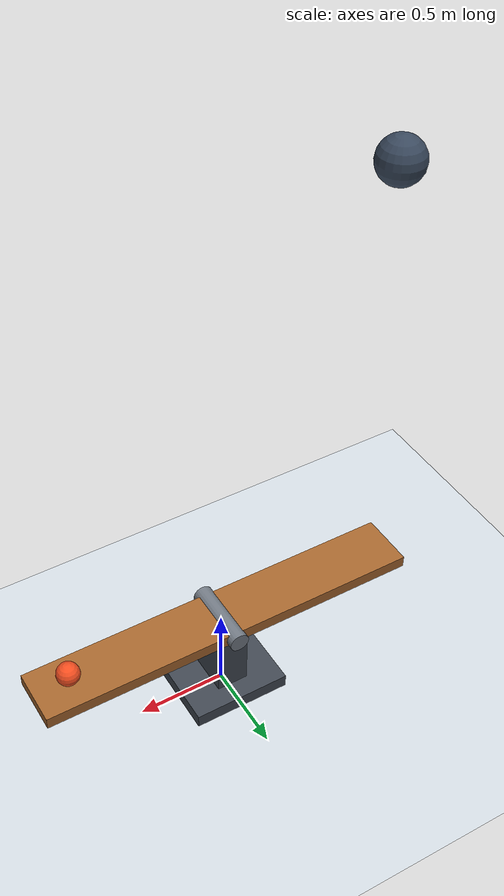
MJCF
<mujoco model="gravity_driven_seesaw">
  <compiler angle="degree" inertiafromgeom="true"/>
  <option timestep="0.002" gravity="0 0 -9.81" integrator="implicitfast" iterations="80"/>

  <worldbody>
    <light name="overhead" pos="0 -3 6" dir="0 0 -1"/>

    <geom name="floor" type="plane" size="8 8 0.1" rgba="0.82 0.85 0.88 1" condim="6" friction="1 0.03 0.03" solref="0.006 1" solimp="0.95 0.99 0.001"/>

    <body name="stand" pos="0 0 0">
      <geom name="stand_base" type="box" pos="0 0 0.04" size="0.28 0.24 0.04" contype="0" conaffinity="0" rgba="0.25 0.28 0.32 1"/>
      <geom name="stand_column" type="box" pos="0 0 0.265" size="0.09 0.13 0.185" contype="0" conaffinity="0" rgba="0.25 0.28 0.32 1"/>
      <geom name="pivot_pin" type="cylinder" pos="0 0 0.5" quat="0.70710678 0.70710678 0 0" size="0.055 0.20" contype="0" conaffinity="0" rgba="0.45 0.48 0.52 1"/>
    </body>

    <body name="seesaw" pos="0 0 0.5">
      <joint name="seesaw_hinge" type="hinge" axis="0 1 0" limited="true" range="-15 0" damping="0.12" armature="0.002" solreflimit="0.006 1" solimplimit="0.99 0.999 0.001"/>
      <geom name="seesaw_plank" type="box" size="1.1 0.16 0.035" mass="0.2" rgba="0.65 0.40 0.18 1" condim="6" friction="0.9 0.01 0.015" solref="0.004 1" solimp="0.95 0.99 0.001"/>
    </body>

    <body name="weight" pos="-0.9 0 3">
      <freejoint/>
      <geom name="weight_sphere" type="sphere" size="0.12" mass="1" rgba="0.22 0.28 0.36 1" condim="6" friction="0.9 0.01 0.015" solref="0.004 1" solimp="0.95 0.99 0.001"/>
    </body>

    <body name="ball" pos="0.9 0 0.6">
      <freejoint/>
      <geom name="ball" type="sphere" size="0.065" mass="0.1" rgba="0.95 0.30 0.12 1" condim="6" friction="0.9 0.01 0.015" solref="0.004 1" solimp="0.95 0.99 0.001"/>
    </body>
  </worldbody>

  <keyframe>
    <key name="start" qpos="0 -0.9 0 3 1 0 0 0 0.9 0 0.6 1 0 0 0" qvel="0 0 0 0 0 0 0 0 0 0 0 0 0"/>
  </keyframe>
</mujoco>
